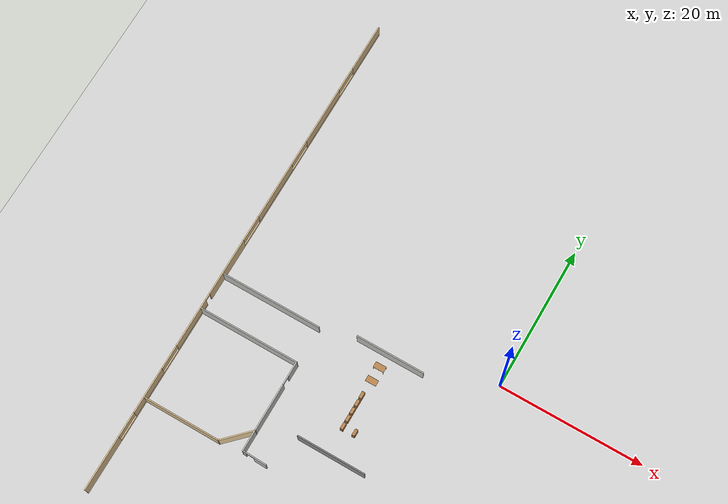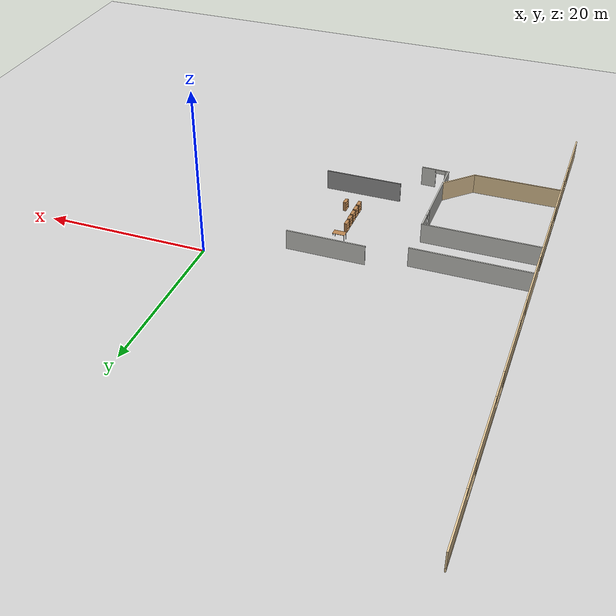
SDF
<sdf version="1.7">
 <world name="default">
  <model name="ground_plane">
   <static>1</static>
   <link name="link">
    <collision name="collision">
     <geometry><plane><normal>0 0 1</normal><size>100 100</size></plane></geometry>
     <surface>
      <contact><collide_bitmask>65535</collide_bitmask></contact>
      <friction><ode><mu>100</mu><mu2>50</mu2></ode></friction>
     </surface>
    </collision>
    <visual name="visual">
     <cast_shadows>0</cast_shadows>
     <geometry><plane><normal>0 0 1</normal><size>100 100</size></plane></geometry>
     <material>
      <script><uri>file://media/materials/scripts/gazebo.material</uri><name>Gazebo/Grey</name></script>
     </material>
    </visual>
   </link>
  </model>
  <model name="Building">
   <pose>0.746899 -1.50406 0 0 -0 1.57073</pose>
   <link name="Wall_19">
    <pose>0.058011 37.7805 0 0 -0 0</pose>
    <visual name="Wall_19_Visual_0">
     <pose>-31.6032 0 1.25 0 -0 0</pose>
     <geometry><box><size>7.48557 0.15 2.5</size></box></geometry>
     <material>
      <script><uri>file://media/materials/scripts/gazebo.material</uri><name>Gazebo/Grey</name></script>
      <ambient>0.921569 0.807843 0.615686 1</ambient>
     </material>
     <meta><layer>0</layer></meta>
    </visual>
    <collision name="Wall_19_Collision_0">
     <geometry><box><size>7.48557 0.15 2.5</size></box></geometry>
     <pose>-31.6032 0 1.25 0 -0 0</pose>
    </collision>
    <visual name="Wall_19_Visual_1">
     <pose>-2.88179 0 1.25 0 -0 0</pose>
     <geometry><box><size>8.13835 0.15 2.5</size></box></geometry>
     <material>
      <script><uri>file://media/materials/scripts/gazebo.material</uri><name>Gazebo/Grey</name></script>
      <ambient>0.921569 0.807843 0.615686 1</ambient>
     </material>
     <meta><layer>0</layer></meta>
    </visual>
    <collision name="Wall_19_Collision_1">
     <geometry><box><size>8.13835 0.15 2.5</size></box></geometry>
     <pose>-2.88179 0 1.25 0 -0 0</pose>
    </collision>
    <visual name="Wall_19_Visual_2">
     <pose>-17.8557 0 0.25 0 -0 0</pose>
     <geometry><box><size>20.0095 0.15 0.5</size></box></geometry>
     <material>
      <script><uri>file://media/materials/scripts/gazebo.material</uri><name>Gazebo/Grey</name></script>
      <ambient>0.921569 0.807843 0.615686 1</ambient>
     </material>
     <meta><layer>0</layer></meta>
    </visual>
    <collision name="Wall_19_Collision_2">
     <geometry><box><size>20.0095 0.15 0.5</size></box></geometry>
     <pose>-17.8557 0 0.25 0 -0 0</pose>
    </collision>
    <visual name="Wall_19_Visual_3">
     <pose>18.2667 0 0.25 0 -0 0</pose>
     <geometry><box><size>34.1586 0.15 0.5</size></box></geometry>
     <material>
      <script><uri>file://media/materials/scripts/gazebo.material</uri><name>Gazebo/Grey</name></script>
      <ambient>0.921569 0.807843 0.615686 1</ambient>
     </material>
     <meta><layer>0</layer></meta>
    </visual>
    <collision name="Wall_19_Collision_3">
     <geometry><box><size>34.1586 0.15 0.5</size></box></geometry>
     <pose>18.2667 0 0.25 0 -0 0</pose>
    </collision>
    <visual name="Wall_19_Visual_4">
     <pose>-21.2381 0 1.5 0 -0 0</pose>
     <geometry><box><size>6.36726 0.15 2</size></box></geometry>
     <material>
      <script><uri>file://media/materials/scripts/gazebo.material</uri><name>Gazebo/Grey</name></script>
      <ambient>0.921569 0.807843 0.615686 1</ambient>
     </material>
     <meta><layer>0</layer></meta>
    </visual>
    <collision name="Wall_19_Collision_4">
     <geometry><box><size>6.36726 0.15 2</size></box></geometry>
     <pose>-21.2381 0 1.5 0 -0 0</pose>
    </collision>
    <visual name="Wall_19_Visual_5">
     <pose>-11.2566 0 1.5 0 -0 0</pose>
     <geometry><box><size>6.81117 0.15 2</size></box></geometry>
     <material>
      <script><uri>file://media/materials/scripts/gazebo.material</uri><name>Gazebo/Grey</name></script>
      <ambient>0.921569 0.807843 0.615686 1</ambient>
     </material>
     <meta><layer>0</layer></meta>
    </visual>
    <collision name="Wall_19_Collision_5">
     <geometry><box><size>6.81117 0.15 2</size></box></geometry>
     <pose>-11.2566 0 1.5 0 -0 0</pose>
    </collision>
    <visual name="Wall_19_Visual_6">
     <pose>-11.2566 0 1.5 0 -0 0</pose>
     <geometry><box><size>6.81117 0.15 2</size></box></geometry>
     <material>
      <script><uri>file://media/materials/scripts/gazebo.material</uri><name>Gazebo/Grey</name></script>
      <ambient>0.921569 0.807843 0.615686 1</ambient>
     </material>
     <meta><layer>0</layer></meta>
    </visual>
    <collision name="Wall_19_Collision_6">
     <geometry><box><size>6.81117 0.15 2</size></box></geometry>
     <pose>-11.2566 0 1.5 0 -0 0</pose>
    </collision>
    <visual name="Wall_19_Visual_7">
     <pose>8.90248 0 1.5 0 -0 0</pose>
     <geometry><box><size>8.18717 0.15 2</size></box></geometry>
     <material>
      <script><uri>file://media/materials/scripts/gazebo.material</uri><name>Gazebo/Grey</name></script>
      <ambient>0.921569 0.807843 0.615686 1</ambient>
     </material>
     <meta><layer>0</layer></meta>
    </visual>
    <collision name="Wall_19_Collision_7">
     <geometry><box><size>8.18717 0.15 2</size></box></geometry>
     <pose>8.90248 0 1.5 0 -0 0</pose>
    </collision>
    <visual name="Wall_19_Visual_8">
     <pose>20.8176 0 1.5 0 -0 0</pose>
     <geometry><box><size>8.2936 0.15 2</size></box></geometry>
     <material>
      <script><uri>file://media/materials/scripts/gazebo.material</uri><name>Gazebo/Grey</name></script>
      <ambient>0.921569 0.807843 0.615686 1</ambient>
     </material>
     <meta><layer>0</layer></meta>
    </visual>
    <collision name="Wall_19_Collision_8">
     <geometry><box><size>8.2936 0.15 2</size></box></geometry>
     <pose>20.8176 0 1.5 0 -0 0</pose>
    </collision>
    <visual name="Wall_19_Visual_9">
     <pose>31.9127 0 1.5 0 -0 0</pose>
     <geometry><box><size>6.86653 0.15 2</size></box></geometry>
     <material>
      <script><uri>file://media/materials/scripts/gazebo.material</uri><name>Gazebo/Grey</name></script>
      <ambient>0.921569 0.807843 0.615686 1</ambient>
     </material>
     <meta><layer>0</layer></meta>
    </visual>
    <collision name="Wall_19_Collision_9">
     <geometry><box><size>6.86653 0.15 2</size></box></geometry>
     <pose>31.9127 0 1.5 0 -0 0</pose>
    </collision>
    <visual name="Wall_19_Visual_10">
     <pose>-26.1411 0 1.9 0 -0 0</pose>
     <geometry><box><size>3.43866 0.15 1.2</size></box></geometry>
     <material>
      <script><uri>file://media/materials/scripts/gazebo.material</uri><name>Gazebo/Grey</name></script>
      <ambient>0.921569 0.807843 0.615686 1</ambient>
     </material>
     <meta><layer>0</layer></meta>
    </visual>
    <collision name="Wall_19_Collision_10">
     <geometry><box><size>3.43866 0.15 1.2</size></box></geometry>
     <pose>-26.1411 0 1.9 0 -0 0</pose>
    </collision>
    <visual name="Wall_19_Visual_11">
     <pose>2.99814 0 1.9 0 -0 0</pose>
     <geometry><box><size>3.62151 0.15 1.2</size></box></geometry>
     <material>
      <script><uri>file://media/materials/scripts/gazebo.material</uri><name>Gazebo/Grey</name></script>
      <ambient>0.921569 0.807843 0.615686 1</ambient>
     </material>
     <meta><layer>0</layer></meta>
    </visual>
    <collision name="Wall_19_Collision_11">
     <geometry><box><size>3.62151 0.15 1.2</size></box></geometry>
     <pose>2.99814 0 1.9 0 -0 0</pose>
    </collision>
    <visual name="Wall_19_Visual_12">
     <pose>-16.3583 0 1.9 0 -0 0</pose>
     <geometry><box><size>3.39237 0.15 1.2</size></box></geometry>
     <material>
      <script><uri>file://media/materials/scripts/gazebo.material</uri><name>Gazebo/Grey</name></script>
      <ambient>0.921569 0.807843 0.615686 1</ambient>
     </material>
     <meta><layer>0</layer></meta>
    </visual>
    <collision name="Wall_19_Collision_12">
     <geometry><box><size>3.39237 0.15 1.2</size></box></geometry>
     <pose>-16.3583 0 1.9 0 -0 0</pose>
    </collision>
    <visual name="Wall_19_Visual_13">
     <pose>14.8334 0 1.9 0 -0 0</pose>
     <geometry><box><size>3.67475 0.15 1.2</size></box></geometry>
     <material>
      <script><uri>file://media/materials/scripts/gazebo.material</uri><name>Gazebo/Grey</name></script>
      <ambient>0.921569 0.807843 0.615686 1</ambient>
     </material>
     <meta><layer>0</layer></meta>
    </visual>
    <collision name="Wall_19_Collision_13">
     <geometry><box><size>3.67475 0.15 1.2</size></box></geometry>
     <pose>14.8334 0 1.9 0 -0 0</pose>
    </collision>
    <visual name="Wall_19_Visual_14">
     <pose>26.7219 0 1.9 0 -0 0</pose>
     <geometry><box><size>3.51504 0.15 1.2</size></box></geometry>
     <material>
      <script><uri>file://media/materials/scripts/gazebo.material</uri><name>Gazebo/Grey</name></script>
      <ambient>0.921569 0.807843 0.615686 1</ambient>
     </material>
     <meta><layer>0</layer></meta>
    </visual>
    <collision name="Wall_19_Collision_14">
     <geometry><box><size>3.51504 0.15 1.2</size></box></geometry>
     <pose>26.7219 0 1.9 0 -0 0</pose>
    </collision>
    <visual name="Wall_19_Visual_15">
     <pose>-7.40097 0 2.25 0 -0 0</pose>
     <geometry><box><size>0.9 0.15 0.5</size></box></geometry>
     <material>
      <script><uri>file://media/materials/scripts/gazebo.material</uri><name>Gazebo/Grey</name></script>
      <ambient>0.921569 0.807843 0.615686 1</ambient>
     </material>
     <meta><layer>0</layer></meta>
    </visual>
    <collision name="Wall_19_Collision_15">
     <geometry><box><size>0.9 0.15 0.5</size></box></geometry>
     <pose>-7.40097 0 2.25 0 -0 0</pose>
    </collision>
    <visual name="Wall_19_Visual_16">
     <pose>-7.40097 0 2.25 0 -0 0</pose>
     <geometry><box><size>0.9 0.15 0.5</size></box></geometry>
     <material>
      <script><uri>file://media/materials/scripts/gazebo.material</uri><name>Gazebo/Grey</name></script>
      <ambient>0.921569 0.807843 0.615686 1</ambient>
     </material>
     <meta><layer>0</layer></meta>
    </visual>
    <collision name="Wall_19_Collision_16">
     <geometry><box><size>0.9 0.15 0.5</size></box></geometry>
     <pose>-7.40097 0 2.25 0 -0 0</pose>
    </collision>
   </link>
   <link name="Wall_21">
    <collision name="Wall_21_Collision">
     <geometry><box><size>10.75 0.15 2.5</size></box></geometry>
     <pose>0 0 1.25 0 -0 0</pose>
    </collision>
    <visual name="Wall_21_Visual">
     <pose>0 0 1.25 0 -0 0</pose>
     <geometry><box><size>10.75 0.15 2.5</size></box></geometry>
     <material>
      <script><uri>file://media/materials/scripts/gazebo.material</uri><name>Gazebo/Grey</name></script>
      <ambient>0.921569 0.807843 0.615686 1</ambient>
     </material>
     <meta><layer>0</layer></meta>
    </visual>
    <pose>-22.0834 32.3763 0 0 0 -1.5708</pose>
   </link>
   <link name="Wall_22">
    <collision name="Wall_22_Collision">
     <geometry><box><size>4.75 0.15 2.5</size></box></geometry>
     <pose>0 0 1.25 0 -0 0</pose>
    </collision>
    <visual name="Wall_22_Visual">
     <pose>0 0 1.25 0 -0 0</pose>
     <geometry><box><size>4.75 0.15 2.5</size></box></geometry>
     <material>
      <script><uri>file://media/materials/scripts/gazebo.material</uri><name>Gazebo/Grey</name></script>
      <ambient>0.921569 0.807843 0.615686 1</ambient>
     </material>
     <meta><layer>0</layer></meta>
    </visual>
    <pose>-20.457 25.45 0 0 0 -0.785398</pose>
   </link>
   <link name="Wall_23">
    <pose>-13.9057 23.8237 0 0 -0 0</pose>
    <visual name="Wall_23_Visual_0">
     <pose>-1.59265 0 1.25 0 -0 0</pose>
     <geometry><box><size>6.6147 0.15 2.5</size></box></geometry>
     <material>
      <script><uri>file://media/materials/scripts/gazebo.material</uri><name>Gazebo/CeilingTiled</name></script>
      <ambient>1 1 1 1</ambient>
     </material>
     <meta><layer>0</layer></meta>
    </visual>
    <collision name="Wall_23_Collision_0">
     <geometry><box><size>6.6147 0.15 2.5</size></box></geometry>
     <pose>-1.59265 0 1.25 0 -0 0</pose>
    </collision>
    <visual name="Wall_23_Visual_1">
     <pose>3.85735 0 1.25 0 -0 0</pose>
     <geometry><box><size>2.0853 0.15 2.5</size></box></geometry>
     <material>
      <script><uri>file://media/materials/scripts/gazebo.material</uri><name>Gazebo/CeilingTiled</name></script>
      <ambient>1 1 1 1</ambient>
     </material>
     <meta><layer>0</layer></meta>
    </visual>
    <collision name="Wall_23_Collision_1">
     <geometry><box><size>2.0853 0.15 2.5</size></box></geometry>
     <pose>3.85735 0 1.25 0 -0 0</pose>
    </collision>
    <visual name="Wall_23_Visual_2">
     <pose>2.2647 0 2.25 0 -0 0</pose>
     <geometry><box><size>1.3 0.15 0.5</size></box></geometry>
     <material>
      <script><uri>file://media/materials/scripts/gazebo.material</uri><name>Gazebo/CeilingTiled</name></script>
      <ambient>1 1 1 1</ambient>
     </material>
     <meta><layer>0</layer></meta>
    </visual>
    <collision name="Wall_23_Collision_2">
     <geometry><box><size>1.3 0.15 0.5</size></box></geometry>
     <pose>2.2647 0 2.25 0 -0 0</pose>
    </collision>
   </link>
   <link name="Wall_24">
    <collision name="Wall_24_Collision">
     <geometry><box><size>14 0.15 2.5</size></box></geometry>
     <pose>0 0 1.25 0 -0 0</pose>
    </collision>
    <visual name="Wall_24_Visual">
     <pose>0 0 1.25 0 -0 0</pose>
     <geometry><box><size>14 0.15 2.5</size></box></geometry>
     <material>
      <script><uri>file://media/materials/scripts/gazebo.material</uri><name>Gazebo/CeilingTiled</name></script>
      <ambient>1 1 1 1</ambient>
     </material>
     <meta><layer>0</layer></meta>
    </visual>
    <pose>-8.9807 30.7487 0 0 -0 1.5708</pose>
   </link>
   <link name="Wall_26">
    <collision name="Wall_26_Collision">
     <geometry><box><size>14 0.15 2.5</size></box></geometry>
     <pose>0 0 1.25 0 -0 0</pose>
    </collision>
    <visual name="Wall_26_Visual">
     <pose>0 0 1.25 0 -0 0</pose>
     <geometry><box><size>14 0.15 2.5</size></box></geometry>
     <material>
      <script><uri>file://media/materials/scripts/gazebo.material</uri><name>Gazebo/CeilingTiled</name></script>
      <ambient>1 1 1 1</ambient>
     </material>
     <meta><layer>0</layer></meta>
    </visual>
    <pose>-3.76339 30.6713 0 0 0 -1.5708</pose>
   </link>
   <link name="Wall_75">
    <collision name="Wall_75_Collision">
     <geometry><box><size>9.5 0.15 2.5</size></box></geometry>
     <pose>0 0 1.25 0 -0 0</pose>
    </collision>
    <visual name="Wall_75_Visual">
     <pose>0 0 1.25 0 -0 0</pose>
     <geometry><box><size>9.5 0.15 2.5</size></box></geometry>
     <material>
      <script><uri>file://media/materials/scripts/gazebo.material</uri><name>Gazebo/Grey</name></script>
      <ambient>1 1 1 1</ambient>
     </material>
     <meta><layer>0</layer></meta>
    </visual>
    <pose>-16.7766 14.2887 0 0 -0 1.5708</pose>
   </link>
   <link name="Wall_80">
    <collision name="Wall_80_Collision">
     <geometry><box><size>9.5 0.15 2.5</size></box></geometry>
     <pose>0 0 1.25 0 -0 0</pose>
    </collision>
    <visual name="Wall_80_Visual">
     <pose>0 0 1.25 0 -0 0</pose>
     <geometry><box><size>9.5 0.15 2.5</size></box></geometry>
     <material>
      <script><uri>file://media/materials/scripts/gazebo.material</uri><name>Gazebo/CeilingTiled</name></script>
      <ambient>1 1 1 1</ambient>
     </material>
     <meta><layer>0</layer></meta>
    </visual>
    <pose>-2.33759 14.303 0 0 0 -1.5708</pose>
   </link>
   <link name="Wall_82">
    <collision name="Wall_82_Collision">
     <geometry><box><size>3 0.15 2.5</size></box></geometry>
     <pose>0 0 1.25 0 -0 0</pose>
    </collision>
    <visual name="Wall_82_Visual">
     <pose>0 0 1.25 0 -0 0</pose>
     <geometry><box><size>3 0.15 2.5</size></box></geometry>
     <material>
      <script><uri>file://media/materials/scripts/gazebo.material</uri><name>Gazebo/CeilingTiled</name></script>
      <ambient>1 1 1 1</ambient>
     </material>
     <meta><layer>0</layer></meta>
    </visual>
    <pose>-20.2557 23.8237 0 0 -0 3.14159</pose>
   </link>
   <link name="Wall_83">
    <pose>-21.7293 22.1244 0 0 0 -1.59942</pose>
    <visual name="Wall_83_Visual_0">
     <pose>-1.44711 0 1.25 0 -0 0</pose>
     <geometry><box><size>0.455603 0.15 2.5</size></box></geometry>
     <material>
      <script><uri>file://media/materials/scripts/gazebo.material</uri><name>Gazebo/CeilingTiled</name></script>
      <ambient>1 1 1 1</ambient>
     </material>
     <meta><layer>0</layer></meta>
    </visual>
    <collision name="Wall_83_Collision_0">
     <geometry><box><size>0.455603 0.15 2.5</size></box></geometry>
     <pose>-1.44711 0 1.25 0 -0 0</pose>
    </collision>
    <visual name="Wall_83_Visual_1">
     <pose>0.777802 0 1.25 0 -0 0</pose>
     <geometry><box><size>1.79421 0.15 2.5</size></box></geometry>
     <material>
      <script><uri>file://media/materials/scripts/gazebo.material</uri><name>Gazebo/CeilingTiled</name></script>
      <ambient>1 1 1 1</ambient>
     </material>
     <meta><layer>0</layer></meta>
    </visual>
    <collision name="Wall_83_Collision_1">
     <geometry><box><size>1.79421 0.15 2.5</size></box></geometry>
     <pose>0.777802 0 1.25 0 -0 0</pose>
    </collision>
    <visual name="Wall_83_Visual_2">
     <pose>-0.669303 0 2.25 0 -0 0</pose>
     <geometry><box><size>1.3 0.15 0.5</size></box></geometry>
     <material>
      <script><uri>file://media/materials/scripts/gazebo.material</uri><name>Gazebo/CeilingTiled</name></script>
      <ambient>1 1 1 1</ambient>
     </material>
     <meta><layer>0</layer></meta>
    </visual>
    <collision name="Wall_83_Collision_2">
     <geometry><box><size>1.3 0.15 0.5</size></box></geometry>
     <pose>-0.669303 0 2.25 0 -0 0</pose>
    </collision>
   </link>
   <static>1</static>
  </model>
  <model name="bookshelf_clone_1_clone_clone_clone_13_clone_3">
   <static>1</static>
   <link name="link">
    <inertial><mass>1</mass></inertial>
    <collision name="back">
     <pose>0 0.005 0.6 0 -0 0</pose>
     <geometry><box><size>0.9 0.01 1.2</size></box></geometry>
    </collision>
    <visual name="visual1">
     <pose>0 0.005 0.6 0 -0 0</pose>
     <geometry><box><size>0.9 0.01 1.2</size></box></geometry>
     <material>
      <script><uri>file://media/materials/scripts/gazebo.material</uri><name>Gazebo/Wood</name></script>
     </material>
    </visual>
    <collision name="left_side">
     <pose>0.45 -0.195 0.6 0 -0 0</pose>
     <geometry><box><size>0.02 0.4 1.2</size></box></geometry>
    </collision>
    <visual name="visual2">
     <pose>0.45 -0.195 0.6 0 -0 0</pose>
     <geometry><box><size>0.02 0.4 1.2</size></box></geometry>
     <material>
      <script><uri>file://media/materials/scripts/gazebo.material</uri><name>Gazebo/Wood</name></script>
     </material>
    </visual>
    <collision name="right_side">
     <pose>-0.45 -0.195 0.6 0 -0 0</pose>
     <geometry><box><size>0.02 0.4 1.2</size></box></geometry>
    </collision>
    <visual name="visual3">
     <pose>-0.45 -0.195 0.6 0 -0 0</pose>
     <geometry><box><size>0.02 0.4 1.2</size></box></geometry>
     <material>
      <script><uri>file://media/materials/scripts/gazebo.material</uri><name>Gazebo/Wood</name></script>
     </material>
    </visual>
    <collision name="bottom">
     <pose>0 -0.195 0.03 0 -0 0</pose>
     <geometry><box><size>0.88 0.4 0.06</size></box></geometry>
    </collision>
    <visual name="visual4">
     <pose>0 -0.195 0.03 0 -0 0</pose>
     <geometry><box><size>0.88 0.4 0.06</size></box></geometry>
     <material>
      <script><uri>file://media/materials/scripts/gazebo.material</uri><name>Gazebo/Wood</name></script>
     </material>
    </visual>
    <collision name="top">
     <pose>0 -0.195 1.19 0 -0 0</pose>
     <geometry><box><size>0.88 0.4 0.02</size></box></geometry>
    </collision>
    <visual name="visual5">
     <pose>0 -0.195 1.19 0 -0 0</pose>
     <geometry><box><size>0.88 0.4 0.02</size></box></geometry>
     <material>
      <script><uri>file://media/materials/scripts/gazebo.material</uri><name>Gazebo/Wood</name></script>
     </material>
    </visual>
    <collision name="low_shelf">
     <pose>0 -0.195 0.43 0 -0 0</pose>
     <geometry><box><size>0.88 0.4 0.02</size></box></geometry>
    </collision>
    <visual name="visual6">
     <pose>0 -0.195 0.43 0 -0 0</pose>
     <geometry><box><size>0.88 0.4 0.02</size></box></geometry>
     <material>
      <script><uri>file://media/materials/scripts/gazebo.material</uri><name>Gazebo/Wood</name></script>
     </material>
    </visual>
    <collision name="high_shelf">
     <pose>0 -0.195 0.8 0 -0 0</pose>
     <geometry><box><size>0.88 0.4 0.02</size></box></geometry>
    </collision>
    <visual name="visual7">
     <pose>0 -0.195 0.8 0 -0 0</pose>
     <geometry><box><size>0.88 0.4 0.02</size></box></geometry>
     <material>
      <script><uri>file://media/materials/scripts/gazebo.material</uri><name>Gazebo/Wood</name></script>
     </material>
    </visual>
   </link>
   <pose>-13.9783 -9.79747 0 0 0 -1.58278</pose>
  </model>
  <model name="bookshelf_clone_1_clone_clone_clone_13_clone_4_clone_2">
   <static>1</static>
   <link name="link">
    <inertial><mass>1</mass></inertial>
    <collision name="back">
     <pose>0 0.005 0.6 0 -0 0</pose>
     <geometry><box><size>0.9 0.01 1.2</size></box></geometry>
    </collision>
    <visual name="visual1">
     <pose>0 0.005 0.6 0 -0 0</pose>
     <geometry><box><size>0.9 0.01 1.2</size></box></geometry>
     <material>
      <script><uri>file://media/materials/scripts/gazebo.material</uri><name>Gazebo/Wood</name></script>
     </material>
    </visual>
    <collision name="left_side">
     <pose>0.45 -0.195 0.6 0 -0 0</pose>
     <geometry><box><size>0.02 0.4 1.2</size></box></geometry>
    </collision>
    <visual name="visual2">
     <pose>0.45 -0.195 0.6 0 -0 0</pose>
     <geometry><box><size>0.02 0.4 1.2</size></box></geometry>
     <material>
      <script><uri>file://media/materials/scripts/gazebo.material</uri><name>Gazebo/Wood</name></script>
     </material>
    </visual>
    <collision name="right_side">
     <pose>-0.45 -0.195 0.6 0 -0 0</pose>
     <geometry><box><size>0.02 0.4 1.2</size></box></geometry>
    </collision>
    <visual name="visual3">
     <pose>-0.45 -0.195 0.6 0 -0 0</pose>
     <geometry><box><size>0.02 0.4 1.2</size></box></geometry>
     <material>
      <script><uri>file://media/materials/scripts/gazebo.material</uri><name>Gazebo/Wood</name></script>
     </material>
    </visual>
    <collision name="bottom">
     <pose>0 -0.195 0.03 0 -0 0</pose>
     <geometry><box><size>0.88 0.4 0.06</size></box></geometry>
    </collision>
    <visual name="visual4">
     <pose>0 -0.195 0.03 0 -0 0</pose>
     <geometry><box><size>0.88 0.4 0.06</size></box></geometry>
     <material>
      <script><uri>file://media/materials/scripts/gazebo.material</uri><name>Gazebo/Wood</name></script>
     </material>
    </visual>
    <collision name="top">
     <pose>0 -0.195 1.19 0 -0 0</pose>
     <geometry><box><size>0.88 0.4 0.02</size></box></geometry>
    </collision>
    <visual name="visual5">
     <pose>0 -0.195 1.19 0 -0 0</pose>
     <geometry><box><size>0.88 0.4 0.02</size></box></geometry>
     <material>
      <script><uri>file://media/materials/scripts/gazebo.material</uri><name>Gazebo/Wood</name></script>
     </material>
    </visual>
    <collision name="low_shelf">
     <pose>0 -0.195 0.43 0 -0 0</pose>
     <geometry><box><size>0.88 0.4 0.02</size></box></geometry>
    </collision>
    <visual name="visual6">
     <pose>0 -0.195 0.43 0 -0 0</pose>
     <geometry><box><size>0.88 0.4 0.02</size></box></geometry>
     <material>
      <script><uri>file://media/materials/scripts/gazebo.material</uri><name>Gazebo/Wood</name></script>
     </material>
    </visual>
    <collision name="high_shelf">
     <pose>0 -0.195 0.8 0 -0 0</pose>
     <geometry><box><size>0.88 0.4 0.02</size></box></geometry>
    </collision>
    <visual name="visual7">
     <pose>0 -0.195 0.8 0 -0 0</pose>
     <geometry><box><size>0.88 0.4 0.02</size></box></geometry>
     <material>
      <script><uri>file://media/materials/scripts/gazebo.material</uri><name>Gazebo/Wood</name></script>
     </material>
    </visual>
   </link>
   <pose>-12.3477 -14.2572 0 0 0 -1.58278</pose>
  </model>
  <model name="bookshelf_clone_1_clone_clone_clone_13_clone_4_clone_3">
   <static>1</static>
   <link name="link">
    <inertial><mass>1</mass></inertial>
    <collision name="back">
     <pose>0 0.005 0.6 0 -0 0</pose>
     <geometry><box><size>0.9 0.01 1.2</size></box></geometry>
    </collision>
    <visual name="visual1">
     <pose>0 0.005 0.6 0 -0 0</pose>
     <geometry><box><size>0.9 0.01 1.2</size></box></geometry>
     <material>
      <script><uri>file://media/materials/scripts/gazebo.material</uri><name>Gazebo/Wood</name></script>
     </material>
    </visual>
    <collision name="left_side">
     <pose>0.45 -0.195 0.6 0 -0 0</pose>
     <geometry><box><size>0.02 0.4 1.2</size></box></geometry>
    </collision>
    <visual name="visual2">
     <pose>0.45 -0.195 0.6 0 -0 0</pose>
     <geometry><box><size>0.02 0.4 1.2</size></box></geometry>
     <material>
      <script><uri>file://media/materials/scripts/gazebo.material</uri><name>Gazebo/Wood</name></script>
     </material>
    </visual>
    <collision name="right_side">
     <pose>-0.45 -0.195 0.6 0 -0 0</pose>
     <geometry><box><size>0.02 0.4 1.2</size></box></geometry>
    </collision>
    <visual name="visual3">
     <pose>-0.45 -0.195 0.6 0 -0 0</pose>
     <geometry><box><size>0.02 0.4 1.2</size></box></geometry>
     <material>
      <script><uri>file://media/materials/scripts/gazebo.material</uri><name>Gazebo/Wood</name></script>
     </material>
    </visual>
    <collision name="bottom">
     <pose>0 -0.195 0.03 0 -0 0</pose>
     <geometry><box><size>0.88 0.4 0.06</size></box></geometry>
    </collision>
    <visual name="visual4">
     <pose>0 -0.195 0.03 0 -0 0</pose>
     <geometry><box><size>0.88 0.4 0.06</size></box></geometry>
     <material>
      <script><uri>file://media/materials/scripts/gazebo.material</uri><name>Gazebo/Wood</name></script>
     </material>
    </visual>
    <collision name="top">
     <pose>0 -0.195 1.19 0 -0 0</pose>
     <geometry><box><size>0.88 0.4 0.02</size></box></geometry>
    </collision>
    <visual name="visual5">
     <pose>0 -0.195 1.19 0 -0 0</pose>
     <geometry><box><size>0.88 0.4 0.02</size></box></geometry>
     <material>
      <script><uri>file://media/materials/scripts/gazebo.material</uri><name>Gazebo/Wood</name></script>
     </material>
    </visual>
    <collision name="low_shelf">
     <pose>0 -0.195 0.43 0 -0 0</pose>
     <geometry><box><size>0.88 0.4 0.02</size></box></geometry>
    </collision>
    <visual name="visual6">
     <pose>0 -0.195 0.43 0 -0 0</pose>
     <geometry><box><size>0.88 0.4 0.02</size></box></geometry>
     <material>
      <script><uri>file://media/materials/scripts/gazebo.material</uri><name>Gazebo/Wood</name></script>
     </material>
    </visual>
    <collision name="high_shelf">
     <pose>0 -0.195 0.8 0 -0 0</pose>
     <geometry><box><size>0.88 0.4 0.02</size></box></geometry>
    </collision>
    <visual name="visual7">
     <pose>0 -0.195 0.8 0 -0 0</pose>
     <geometry><box><size>0.88 0.4 0.02</size></box></geometry>
     <material>
      <script><uri>file://media/materials/scripts/gazebo.material</uri><name>Gazebo/Wood</name></script>
     </material>
    </visual>
   </link>
   <pose>-13.9794 -10.9312 0 0 0 -1.58278</pose>
  </model>
  <model name="bookshelf_clone_1_clone_clone_clone_13_clone_4_clone_4">
   <static>1</static>
   <link name="link">
    <inertial><mass>1</mass></inertial>
    <collision name="back">
     <pose>0 0.005 0.6 0 -0 0</pose>
     <geometry><box><size>0.9 0.01 1.2</size></box></geometry>
    </collision>
    <visual name="visual1">
     <pose>0 0.005 0.6 0 -0 0</pose>
     <geometry><box><size>0.9 0.01 1.2</size></box></geometry>
     <material>
      <script><uri>file://media/materials/scripts/gazebo.material</uri><name>Gazebo/Wood</name></script>
     </material>
    </visual>
    <collision name="left_side">
     <pose>0.45 -0.195 0.6 0 -0 0</pose>
     <geometry><box><size>0.02 0.4 1.2</size></box></geometry>
    </collision>
    <visual name="visual2">
     <pose>0.45 -0.195 0.6 0 -0 0</pose>
     <geometry><box><size>0.02 0.4 1.2</size></box></geometry>
     <material>
      <script><uri>file://media/materials/scripts/gazebo.material</uri><name>Gazebo/Wood</name></script>
     </material>
    </visual>
    <collision name="right_side">
     <pose>-0.45 -0.195 0.6 0 -0 0</pose>
     <geometry><box><size>0.02 0.4 1.2</size></box></geometry>
    </collision>
    <visual name="visual3">
     <pose>-0.45 -0.195 0.6 0 -0 0</pose>
     <geometry><box><size>0.02 0.4 1.2</size></box></geometry>
     <material>
      <script><uri>file://media/materials/scripts/gazebo.material</uri><name>Gazebo/Wood</name></script>
     </material>
    </visual>
    <collision name="bottom">
     <pose>0 -0.195 0.03 0 -0 0</pose>
     <geometry><box><size>0.88 0.4 0.06</size></box></geometry>
    </collision>
    <visual name="visual4">
     <pose>0 -0.195 0.03 0 -0 0</pose>
     <geometry><box><size>0.88 0.4 0.06</size></box></geometry>
     <material>
      <script><uri>file://media/materials/scripts/gazebo.material</uri><name>Gazebo/Wood</name></script>
     </material>
    </visual>
    <collision name="top">
     <pose>0 -0.195 1.19 0 -0 0</pose>
     <geometry><box><size>0.88 0.4 0.02</size></box></geometry>
    </collision>
    <visual name="visual5">
     <pose>0 -0.195 1.19 0 -0 0</pose>
     <geometry><box><size>0.88 0.4 0.02</size></box></geometry>
     <material>
      <script><uri>file://media/materials/scripts/gazebo.material</uri><name>Gazebo/Wood</name></script>
     </material>
    </visual>
    <collision name="low_shelf">
     <pose>0 -0.195 0.43 0 -0 0</pose>
     <geometry><box><size>0.88 0.4 0.02</size></box></geometry>
    </collision>
    <visual name="visual6">
     <pose>0 -0.195 0.43 0 -0 0</pose>
     <geometry><box><size>0.88 0.4 0.02</size></box></geometry>
     <material>
      <script><uri>file://media/materials/scripts/gazebo.material</uri><name>Gazebo/Wood</name></script>
     </material>
    </visual>
    <collision name="high_shelf">
     <pose>0 -0.195 0.8 0 -0 0</pose>
     <geometry><box><size>0.88 0.4 0.02</size></box></geometry>
    </collision>
    <visual name="visual7">
     <pose>0 -0.195 0.8 0 -0 0</pose>
     <geometry><box><size>0.88 0.4 0.02</size></box></geometry>
     <material>
      <script><uri>file://media/materials/scripts/gazebo.material</uri><name>Gazebo/Wood</name></script>
     </material>
    </visual>
   </link>
   <pose>-13.9883 -12.0528 0 0 0 -1.58278</pose>
  </model>
  <model name="bookshelf_clone_1_clone_clone_clone_13_clone_4_clone_5">
   <static>1</static>
   <link name="link">
    <inertial><mass>1</mass></inertial>
    <collision name="back">
     <pose>0 0.005 0.6 0 -0 0</pose>
     <geometry><box><size>0.9 0.01 1.2</size></box></geometry>
    </collision>
    <visual name="visual1">
     <pose>0 0.005 0.6 0 -0 0</pose>
     <geometry><box><size>0.9 0.01 1.2</size></box></geometry>
     <material>
      <script><uri>file://media/materials/scripts/gazebo.material</uri><name>Gazebo/Wood</name></script>
     </material>
    </visual>
    <collision name="left_side">
     <pose>0.45 -0.195 0.6 0 -0 0</pose>
     <geometry><box><size>0.02 0.4 1.2</size></box></geometry>
    </collision>
    <visual name="visual2">
     <pose>0.45 -0.195 0.6 0 -0 0</pose>
     <geometry><box><size>0.02 0.4 1.2</size></box></geometry>
     <material>
      <script><uri>file://media/materials/scripts/gazebo.material</uri><name>Gazebo/Wood</name></script>
     </material>
    </visual>
    <collision name="right_side">
     <pose>-0.45 -0.195 0.6 0 -0 0</pose>
     <geometry><box><size>0.02 0.4 1.2</size></box></geometry>
    </collision>
    <visual name="visual3">
     <pose>-0.45 -0.195 0.6 0 -0 0</pose>
     <geometry><box><size>0.02 0.4 1.2</size></box></geometry>
     <material>
      <script><uri>file://media/materials/scripts/gazebo.material</uri><name>Gazebo/Wood</name></script>
     </material>
    </visual>
    <collision name="bottom">
     <pose>0 -0.195 0.03 0 -0 0</pose>
     <geometry><box><size>0.88 0.4 0.06</size></box></geometry>
    </collision>
    <visual name="visual4">
     <pose>0 -0.195 0.03 0 -0 0</pose>
     <geometry><box><size>0.88 0.4 0.06</size></box></geometry>
     <material>
      <script><uri>file://media/materials/scripts/gazebo.material</uri><name>Gazebo/Wood</name></script>
     </material>
    </visual>
    <collision name="top">
     <pose>0 -0.195 1.19 0 -0 0</pose>
     <geometry><box><size>0.88 0.4 0.02</size></box></geometry>
    </collision>
    <visual name="visual5">
     <pose>0 -0.195 1.19 0 -0 0</pose>
     <geometry><box><size>0.88 0.4 0.02</size></box></geometry>
     <material>
      <script><uri>file://media/materials/scripts/gazebo.material</uri><name>Gazebo/Wood</name></script>
     </material>
    </visual>
    <collision name="low_shelf">
     <pose>0 -0.195 0.43 0 -0 0</pose>
     <geometry><box><size>0.88 0.4 0.02</size></box></geometry>
    </collision>
    <visual name="visual6">
     <pose>0 -0.195 0.43 0 -0 0</pose>
     <geometry><box><size>0.88 0.4 0.02</size></box></geometry>
     <material>
      <script><uri>file://media/materials/scripts/gazebo.material</uri><name>Gazebo/Wood</name></script>
     </material>
    </visual>
    <collision name="high_shelf">
     <pose>0 -0.195 0.8 0 -0 0</pose>
     <geometry><box><size>0.88 0.4 0.02</size></box></geometry>
    </collision>
    <visual name="visual7">
     <pose>0 -0.195 0.8 0 -0 0</pose>
     <geometry><box><size>0.88 0.4 0.02</size></box></geometry>
     <material>
      <script><uri>file://media/materials/scripts/gazebo.material</uri><name>Gazebo/Wood</name></script>
     </material>
    </visual>
   </link>
   <pose>-13.9875 -13.152 0 0 0 -1.58278</pose>
  </model>
  <model name="bookshelf_clone_1_clone_clone_clone_13_clone_4_clone_6">
   <static>1</static>
   <link name="link">
    <inertial><mass>1</mass></inertial>
    <collision name="back">
     <pose>0 0.005 0.6 0 -0 0</pose>
     <geometry><box><size>0.9 0.01 1.2</size></box></geometry>
    </collision>
    <visual name="visual1">
     <pose>0 0.005 0.6 0 -0 0</pose>
     <geometry><box><size>0.9 0.01 1.2</size></box></geometry>
     <material>
      <script><uri>file://media/materials/scripts/gazebo.material</uri><name>Gazebo/Wood</name></script>
     </material>
    </visual>
    <collision name="left_side">
     <pose>0.45 -0.195 0.6 0 -0 0</pose>
     <geometry><box><size>0.02 0.4 1.2</size></box></geometry>
    </collision>
    <visual name="visual2">
     <pose>0.45 -0.195 0.6 0 -0 0</pose>
     <geometry><box><size>0.02 0.4 1.2</size></box></geometry>
     <material>
      <script><uri>file://media/materials/scripts/gazebo.material</uri><name>Gazebo/Wood</name></script>
     </material>
    </visual>
    <collision name="right_side">
     <pose>-0.45 -0.195 0.6 0 -0 0</pose>
     <geometry><box><size>0.02 0.4 1.2</size></box></geometry>
    </collision>
    <visual name="visual3">
     <pose>-0.45 -0.195 0.6 0 -0 0</pose>
     <geometry><box><size>0.02 0.4 1.2</size></box></geometry>
     <material>
      <script><uri>file://media/materials/scripts/gazebo.material</uri><name>Gazebo/Wood</name></script>
     </material>
    </visual>
    <collision name="bottom">
     <pose>0 -0.195 0.03 0 -0 0</pose>
     <geometry><box><size>0.88 0.4 0.06</size></box></geometry>
    </collision>
    <visual name="visual4">
     <pose>0 -0.195 0.03 0 -0 0</pose>
     <geometry><box><size>0.88 0.4 0.06</size></box></geometry>
     <material>
      <script><uri>file://media/materials/scripts/gazebo.material</uri><name>Gazebo/Wood</name></script>
     </material>
    </visual>
    <collision name="top">
     <pose>0 -0.195 1.19 0 -0 0</pose>
     <geometry><box><size>0.88 0.4 0.02</size></box></geometry>
    </collision>
    <visual name="visual5">
     <pose>0 -0.195 1.19 0 -0 0</pose>
     <geometry><box><size>0.88 0.4 0.02</size></box></geometry>
     <material>
      <script><uri>file://media/materials/scripts/gazebo.material</uri><name>Gazebo/Wood</name></script>
     </material>
    </visual>
    <collision name="low_shelf">
     <pose>0 -0.195 0.43 0 -0 0</pose>
     <geometry><box><size>0.88 0.4 0.02</size></box></geometry>
    </collision>
    <visual name="visual6">
     <pose>0 -0.195 0.43 0 -0 0</pose>
     <geometry><box><size>0.88 0.4 0.02</size></box></geometry>
     <material>
      <script><uri>file://media/materials/scripts/gazebo.material</uri><name>Gazebo/Wood</name></script>
     </material>
    </visual>
    <collision name="high_shelf">
     <pose>0 -0.195 0.8 0 -0 0</pose>
     <geometry><box><size>0.88 0.4 0.02</size></box></geometry>
    </collision>
    <visual name="visual7">
     <pose>0 -0.195 0.8 0 -0 0</pose>
     <geometry><box><size>0.88 0.4 0.02</size></box></geometry>
     <material>
      <script><uri>file://media/materials/scripts/gazebo.material</uri><name>Gazebo/Wood</name></script>
     </material>
    </visual>
   </link>
   <pose>-14.0117 -14.276 0 0 0 -1.58278</pose>
  </model>
  <model name="table_clone_clone_2_clone_clone">
   <static>1</static>
   <link name="link">
    <collision name="surface">
     <pose>0 0 1 0 -0 0</pose>
     <geometry><box><size>1.5 0.8 0.03</size></box></geometry>
     <surface><friction><ode><mu>0.6</mu><mu2>0.6</mu2></ode></friction></surface>
    </collision>
    <visual name="visual1">
     <pose>0 0 1 0 -0 0</pose>
     <geometry><box><size>1.5 0.8 0.03</size></box></geometry>
     <material>
      <script><uri>file://media/materials/scripts/gazebo.material</uri><name>Gazebo/Wood</name></script>
     </material>
    </visual>
    <collision name="front_left_leg">
     <pose>0.68 0.38 0.5 0 -0 0</pose>
     <geometry><cylinder><radius>0.02</radius><length>1</length></cylinder></geometry>
    </collision>
    <visual name="front_left_leg">
     <pose>0.68 0.38 0.5 0 -0 0</pose>
     <geometry><cylinder><radius>0.02</radius><length>1</length></cylinder></geometry>
     <material>
      <script><uri>file://media/materials/scripts/gazebo.material</uri><name>Gazebo/Grey</name></script>
     </material>
    </visual>
    <collision name="front_right_leg">
     <pose>0.68 -0.38 0.5 0 -0 0</pose>
     <geometry><cylinder><radius>0.02</radius><length>1</length></cylinder></geometry>
    </collision>
    <visual name="front_right_leg">
     <pose>0.68 -0.38 0.5 0 -0 0</pose>
     <geometry><cylinder><radius>0.02</radius><length>1</length></cylinder></geometry>
     <material>
      <script><uri>file://media/materials/scripts/gazebo.material</uri><name>Gazebo/Grey</name></script>
     </material>
    </visual>
    <collision name="back_right_leg">
     <pose>-0.68 -0.38 0.5 0 -0 0</pose>
     <geometry><cylinder><radius>0.02</radius><length>1</length></cylinder></geometry>
    </collision>
    <visual name="back_right_leg">
     <pose>-0.68 -0.38 0.5 0 -0 0</pose>
     <geometry><cylinder><radius>0.02</radius><length>1</length></cylinder></geometry>
     <material>
      <script><uri>file://media/materials/scripts/gazebo.material</uri><name>Gazebo/Grey</name></script>
     </material>
    </visual>
    <collision name="back_left_leg">
     <pose>-0.68 0.38 0.5 0 -0 0</pose>
     <geometry><cylinder><radius>0.02</radius><length>1</length></cylinder></geometry>
    </collision>
    <visual name="back_left_leg">
     <pose>-0.68 0.38 0.5 0 -0 0</pose>
     <geometry><cylinder><radius>0.02</radius><length>1</length></cylinder></geometry>
     <material>
      <script><uri>file://media/materials/scripts/gazebo.material</uri><name>Gazebo/Grey</name></script>
     </material>
    </visual>
   </link>
   <pose>-14.0079 -7.56188 0 0 -0 0</pose>
  </model>
  <model name="table_clone_clone_2_clone_clone_0">
   <static>1</static>
   <link name="link">
    <collision name="surface">
     <pose>0 0 1 0 -0 0</pose>
     <geometry><box><size>1.5 0.8 0.03</size></box></geometry>
     <surface><friction><ode><mu>0.6</mu><mu2>0.6</mu2></ode></friction></surface>
    </collision>
    <visual name="visual1">
     <pose>0 0 1 0 -0 0</pose>
     <geometry><box><size>1.5 0.8 0.03</size></box></geometry>
     <material>
      <script><uri>file://media/materials/scripts/gazebo.material</uri><name>Gazebo/Wood</name></script>
     </material>
    </visual>
    <collision name="front_left_leg">
     <pose>0.68 0.38 0.5 0 -0 0</pose>
     <geometry><cylinder><radius>0.02</radius><length>1</length></cylinder></geometry>
    </collision>
    <visual name="front_left_leg">
     <pose>0.68 0.38 0.5 0 -0 0</pose>
     <geometry><cylinder><radius>0.02</radius><length>1</length></cylinder></geometry>
     <material>
      <script><uri>file://media/materials/scripts/gazebo.material</uri><name>Gazebo/Grey</name></script>
     </material>
    </visual>
    <collision name="front_right_leg">
     <pose>0.68 -0.38 0.5 0 -0 0</pose>
     <geometry><cylinder><radius>0.02</radius><length>1</length></cylinder></geometry>
    </collision>
    <visual name="front_right_leg">
     <pose>0.68 -0.38 0.5 0 -0 0</pose>
     <geometry><cylinder><radius>0.02</radius><length>1</length></cylinder></geometry>
     <material>
      <script><uri>file://media/materials/scripts/gazebo.material</uri><name>Gazebo/Grey</name></script>
     </material>
    </visual>
    <collision name="back_right_leg">
     <pose>-0.68 -0.38 0.5 0 -0 0</pose>
     <geometry><cylinder><radius>0.02</radius><length>1</length></cylinder></geometry>
    </collision>
    <visual name="back_right_leg">
     <pose>-0.68 -0.38 0.5 0 -0 0</pose>
     <geometry><cylinder><radius>0.02</radius><length>1</length></cylinder></geometry>
     <material>
      <script><uri>file://media/materials/scripts/gazebo.material</uri><name>Gazebo/Grey</name></script>
     </material>
    </visual>
    <collision name="back_left_leg">
     <pose>-0.68 0.38 0.5 0 -0 0</pose>
     <geometry><cylinder><radius>0.02</radius><length>1</length></cylinder></geometry>
    </collision>
    <visual name="back_left_leg">
     <pose>-0.68 0.38 0.5 0 -0 0</pose>
     <geometry><cylinder><radius>0.02</radius><length>1</length></cylinder></geometry>
     <material>
      <script><uri>file://media/materials/scripts/gazebo.material</uri><name>Gazebo/Grey</name></script>
     </material>
    </visual>
   </link>
   <pose>-14.0376 -5.57987 0 0 -0 0</pose>
  </model>
 </world>
</sdf>
